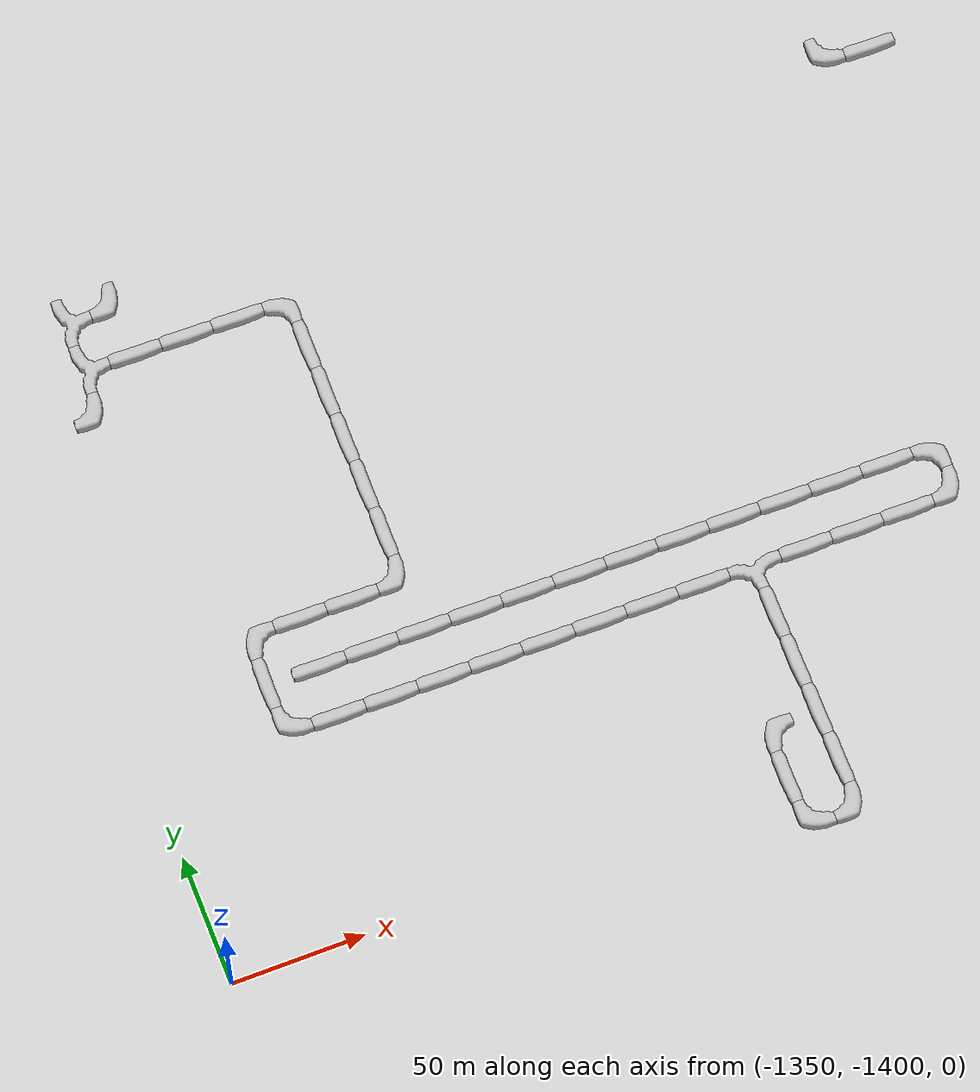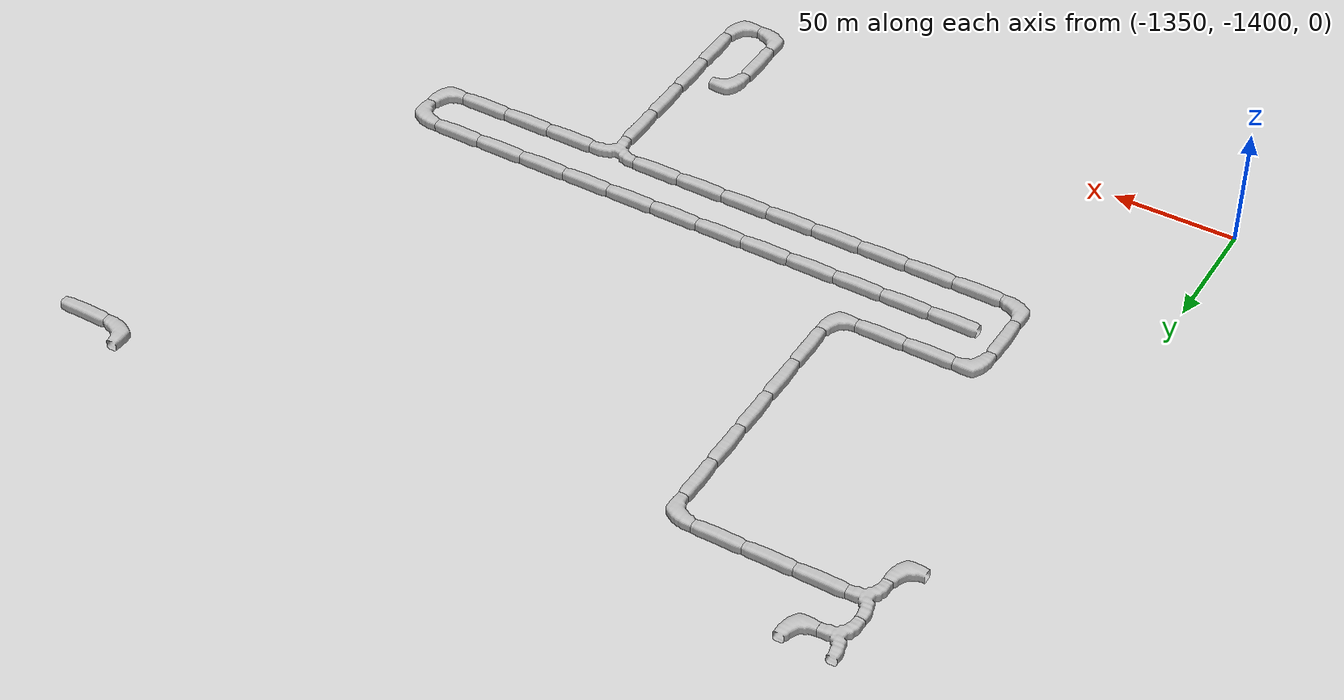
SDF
<sdf version="1.6">
 <world name="cave_32000_0">
  <include>
   <static>true</static>
   <name>cave_-50_-57</name>
   <pose>-1000 -1140 0 0 0 1.5707963267948966</pose>
   <uri>model://cave_straight_20m</uri>
  </include>
  <include>
   <static>true</static>
   <name>cave_-51_-57</name>
   <pose>-1020 -1140 0 0 0 0.0</pose>
   <uri>model://cave_L_20m</uri>
  </include>
  <include>
   <static>true</static>
   <name>cave_-65_-57</name>
   <pose>-1300 -1140 0 0 0 1.5707963267948966</pose>
   <uri>model://cave_L_20m</uri>
  </include>
  <include>
   <static>true</static>
   <name>cave_-66_-57</name>
   <pose>-1320 -1140 0 0 0 -1.5707963267948966</pose>
   <uri>model://cave_3way_20m</uri>
  </include>
  <include>
   <static>true</static>
   <name>cave_-66_-58</name>
   <pose>-1320 -1160 0 0 0 -1.5707963267948966</pose>
   <uri>model://cave_3way_20m</uri>
  </include>
  <include>
   <static>true</static>
   <name>cave_-65_-58</name>
   <pose>-1300 -1160 0 0 0 1.5707963267948966</pose>
   <uri>model://cave_straight_20m</uri>
  </include>
  <include>
   <static>true</static>
   <name>cave_-64_-58</name>
   <pose>-1280 -1160 0 0 0 1.5707963267948966</pose>
   <uri>model://cave_straight_20m</uri>
  </include>
  <include>
   <static>true</static>
   <name>cave_-63_-58</name>
   <pose>-1260 -1160 0 0 0 1.5707963267948966</pose>
   <uri>model://cave_straight_20m</uri>
  </include>
  <include>
   <static>true</static>
   <name>cave_-62_-58</name>
   <pose>-1240 -1160 0 0 0 3.141592653589793</pose>
   <uri>model://cave_L_20m</uri>
  </include>
  <include>
   <static>true</static>
   <name>cave_-62_-59</name>
   <pose>-1240 -1180 0 0 0 0.0</pose>
   <uri>model://cave_straight_20m</uri>
  </include>
  <include>
   <static>true</static>
   <name>cave_-62_-60</name>
   <pose>-1240 -1200 0 0 0 0.0</pose>
   <uri>model://cave_straight_20m</uri>
  </include>
  <include>
   <static>true</static>
   <name>cave_-62_-61</name>
   <pose>-1240 -1220 0 0 0 0.0</pose>
   <uri>model://cave_straight_20m</uri>
  </include>
  <include>
   <static>true</static>
   <name>cave_-62_-62</name>
   <pose>-1240 -1240 0 0 0 0.0</pose>
   <uri>model://cave_straight_20m</uri>
  </include>
  <include>
   <static>true</static>
   <name>cave_-62_-63</name>
   <pose>-1240 -1260 0 0 0 0.0</pose>
   <uri>model://cave_straight_20m</uri>
  </include>
  <include>
   <static>true</static>
   <name>cave_-62_-64</name>
   <pose>-1240 -1280 0 0 0 1.5707963267948966</pose>
   <uri>model://cave_L_20m</uri>
  </include>
  <include>
   <static>true</static>
   <name>cave_-63_-64</name>
   <pose>-1260 -1280 0 0 0 1.5707963267948966</pose>
   <uri>model://cave_straight_20m</uri>
  </include>
  <include>
   <static>true</static>
   <name>cave_-64_-64</name>
   <pose>-1280 -1280 0 0 0 1.5707963267948966</pose>
   <uri>model://cave_straight_20m</uri>
  </include>
  <include>
   <static>true</static>
   <name>cave_-65_-64</name>
   <pose>-1300 -1280 0 0 0 -1.5707963267948966</pose>
   <uri>model://cave_L_20m</uri>
  </include>
  <include>
   <static>true</static>
   <name>cave_-65_-65</name>
   <pose>-1300 -1300 0 0 0 0.0</pose>
   <uri>model://cave_straight_20m</uri>
  </include>
  <include>
   <static>true</static>
   <name>cave_-65_-66</name>
   <pose>-1300 -1320 0 0 0 0.0</pose>
   <uri>model://cave_L_20m</uri>
  </include>
  <include>
   <static>true</static>
   <name>cave_-64_-66</name>
   <pose>-1280 -1320 0 0 0 1.5707963267948966</pose>
   <uri>model://cave_straight_20m</uri>
  </include>
  <include>
   <static>true</static>
   <name>cave_-63_-66</name>
   <pose>-1260 -1320 0 0 0 1.5707963267948966</pose>
   <uri>model://cave_straight_20m</uri>
  </include>
  <include>
   <static>true</static>
   <name>cave_-62_-66</name>
   <pose>-1240 -1320 0 0 0 1.5707963267948966</pose>
   <uri>model://cave_straight_20m</uri>
  </include>
  <include>
   <static>true</static>
   <name>cave_-61_-66</name>
   <pose>-1220 -1320 0 0 0 1.5707963267948966</pose>
   <uri>model://cave_straight_20m</uri>
  </include>
  <include>
   <static>true</static>
   <name>cave_-60_-66</name>
   <pose>-1200 -1320 0 0 0 1.5707963267948966</pose>
   <uri>model://cave_straight_20m</uri>
  </include>
  <include>
   <static>true</static>
   <name>cave_-59_-66</name>
   <pose>-1180 -1320 0 0 0 1.5707963267948966</pose>
   <uri>model://cave_straight_20m</uri>
  </include>
  <include>
   <static>true</static>
   <name>cave_-58_-66</name>
   <pose>-1160 -1320 0 0 0 1.5707963267948966</pose>
   <uri>model://cave_straight_20m</uri>
  </include>
  <include>
   <static>true</static>
   <name>cave_-57_-66</name>
   <pose>-1140 -1320 0 0 0 1.5707963267948966</pose>
   <uri>model://cave_straight_20m</uri>
  </include>
  <include>
   <static>true</static>
   <name>cave_-56_-66</name>
   <pose>-1120 -1320 0 0 0 3.141592653589793</pose>
   <uri>model://cave_3way_20m</uri>
  </include>
  <include>
   <static>true</static>
   <name>cave_-55_-66</name>
   <pose>-1100 -1320 0 0 0 1.5707963267948966</pose>
   <uri>model://cave_straight_20m</uri>
  </include>
  <include>
   <static>true</static>
   <name>cave_-54_-66</name>
   <pose>-1080 -1320 0 0 0 1.5707963267948966</pose>
   <uri>model://cave_straight_20m</uri>
  </include>
  <include>
   <static>true</static>
   <name>cave_-53_-66</name>
   <pose>-1060 -1320 0 0 0 1.5707963267948966</pose>
   <uri>model://cave_straight_20m</uri>
  </include>
  <include>
   <static>true</static>
   <name>cave_-52_-66</name>
   <pose>-1040 -1320 0 0 0 1.5707963267948966</pose>
   <uri>model://cave_L_20m</uri>
  </include>
  <include>
   <static>true</static>
   <name>cave_-52_-65</name>
   <pose>-1040 -1300 0 0 0 3.141592653589793</pose>
   <uri>model://cave_L_20m</uri>
  </include>
  <include>
   <static>true</static>
   <name>cave_-53_-65</name>
   <pose>-1060 -1300 0 0 0 1.5707963267948966</pose>
   <uri>model://cave_straight_20m</uri>
  </include>
  <include>
   <static>true</static>
   <name>cave_-54_-65</name>
   <pose>-1080 -1300 0 0 0 1.5707963267948966</pose>
   <uri>model://cave_straight_20m</uri>
  </include>
  <include>
   <static>true</static>
   <name>cave_-55_-65</name>
   <pose>-1100 -1300 0 0 0 1.5707963267948966</pose>
   <uri>model://cave_straight_20m</uri>
  </include>
  <include>
   <static>true</static>
   <name>cave_-56_-65</name>
   <pose>-1120 -1300 0 0 0 1.5707963267948966</pose>
   <uri>model://cave_straight_20m</uri>
  </include>
  <include>
   <static>true</static>
   <name>cave_-57_-65</name>
   <pose>-1140 -1300 0 0 0 1.5707963267948966</pose>
   <uri>model://cave_straight_20m</uri>
  </include>
  <include>
   <static>true</static>
   <name>cave_-58_-65</name>
   <pose>-1160 -1300 0 0 0 1.5707963267948966</pose>
   <uri>model://cave_straight_20m</uri>
  </include>
  <include>
   <static>true</static>
   <name>cave_-59_-65</name>
   <pose>-1180 -1300 0 0 0 1.5707963267948966</pose>
   <uri>model://cave_straight_20m</uri>
  </include>
  <include>
   <static>true</static>
   <name>cave_-60_-65</name>
   <pose>-1200 -1300 0 0 0 1.5707963267948966</pose>
   <uri>model://cave_straight_20m</uri>
  </include>
  <include>
   <static>true</static>
   <name>cave_-61_-65</name>
   <pose>-1220 -1300 0 0 0 1.5707963267948966</pose>
   <uri>model://cave_straight_20m</uri>
  </include>
  <include>
   <static>true</static>
   <name>cave_-62_-65</name>
   <pose>-1240 -1300 0 0 0 1.5707963267948966</pose>
   <uri>model://cave_straight_20m</uri>
  </include>
  <include>
   <static>true</static>
   <name>cave_-63_-65</name>
   <pose>-1260 -1300 0 0 0 1.5707963267948966</pose>
   <uri>model://cave_straight_20m</uri>
  </include>
  <include>
   <static>true</static>
   <name>cave_-64_-65</name>
   <pose>-1280 -1300 0 0 0 1.5707963267948966</pose>
   <uri>model://cave_straight_20m</uri>
  </include>
  <include>
   <static>true</static>
   <name>cave_-56_-67</name>
   <pose>-1120 -1340 0 0 0 0.0</pose>
   <uri>model://cave_straight_20m</uri>
  </include>
  <include>
   <static>true</static>
   <name>cave_-56_-68</name>
   <pose>-1120 -1360 0 0 0 0.0</pose>
   <uri>model://cave_straight_20m</uri>
  </include>
  <include>
   <static>true</static>
   <name>cave_-56_-69</name>
   <pose>-1120 -1380 0 0 0 0.0</pose>
   <uri>model://cave_straight_20m</uri>
  </include>
  <include>
   <static>true</static>
   <name>cave_-56_-70</name>
   <pose>-1120 -1400 0 0 0 0.0</pose>
   <uri>model://cave_straight_20m</uri>
  </include>
  <include>
   <static>true</static>
   <name>cave_-56_-71</name>
   <pose>-1120 -1420 0 0 0 1.5707963267948966</pose>
   <uri>model://cave_L_20m</uri>
  </include>
  <include>
   <static>true</static>
   <name>cave_-57_-71</name>
   <pose>-1140 -1420 0 0 0 0.0</pose>
   <uri>model://cave_L_20m</uri>
  </include>
  <include>
   <static>true</static>
   <name>cave_-57_-70</name>
   <pose>-1140 -1400 0 0 0 0.0</pose>
   <uri>model://cave_straight_20m</uri>
  </include>
  <include>
   <static>true</static>
   <name>cave_-57_-69</name>
   <pose>-1140 -1380 0 0 0 -1.5707963267948966</pose>
   <uri>model://cave_L_20m</uri>
  </include>
  <include>
   <static>true</static>
   <name>cave_-66_-59</name>
   <pose>-1320 -1180 0 0 0 1.5707963267948966</pose>
   <uri>model://cave_L_20m</uri>
  </include>
 </world>
</sdf>
